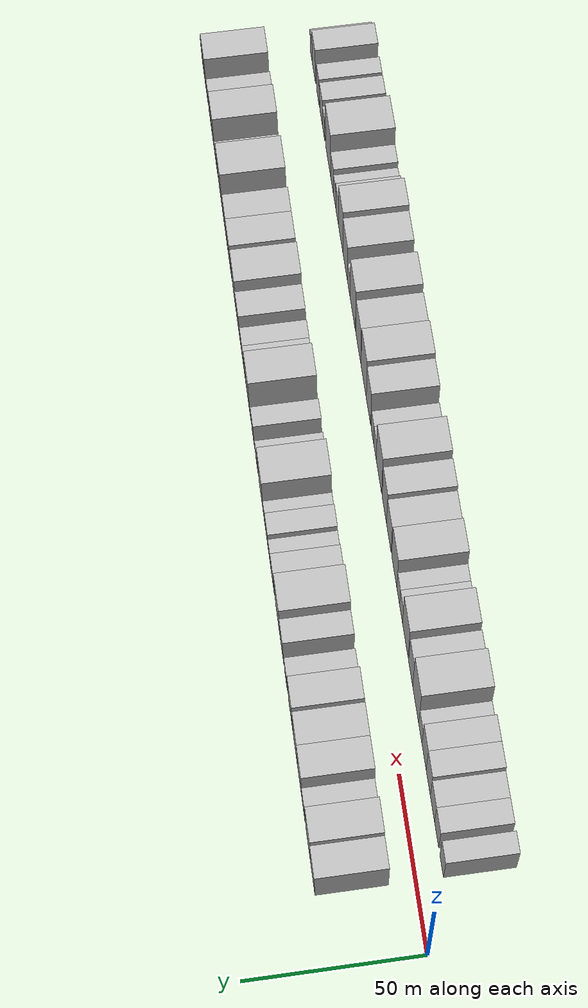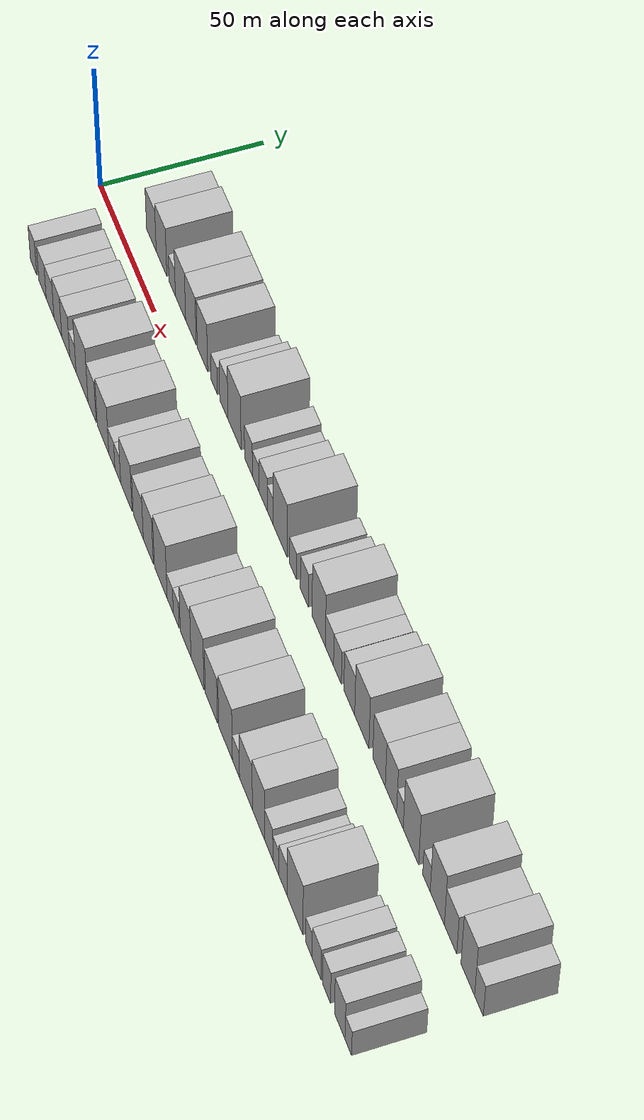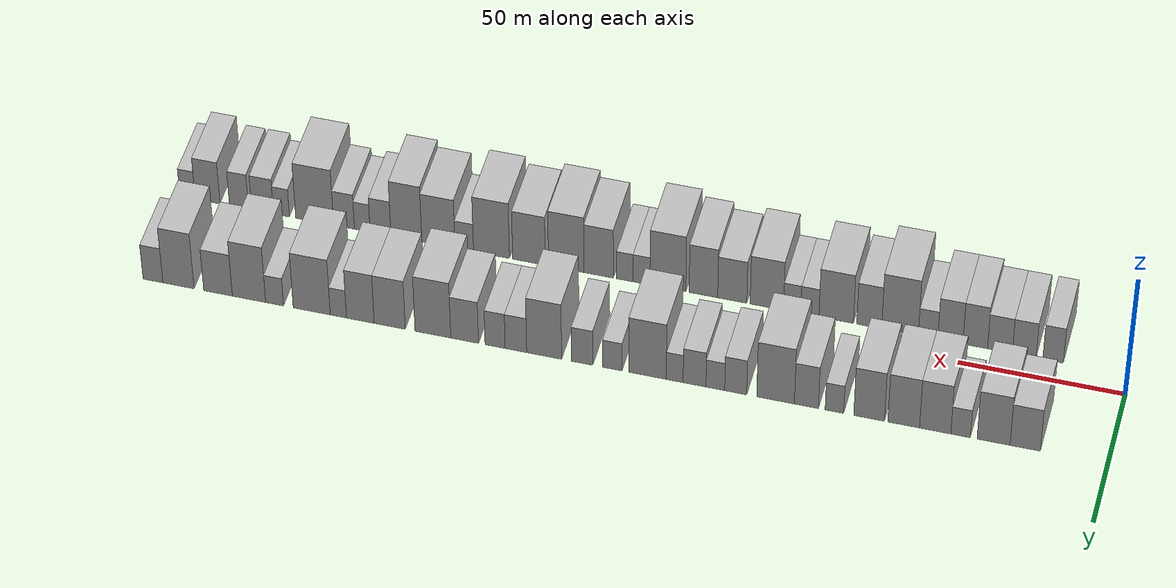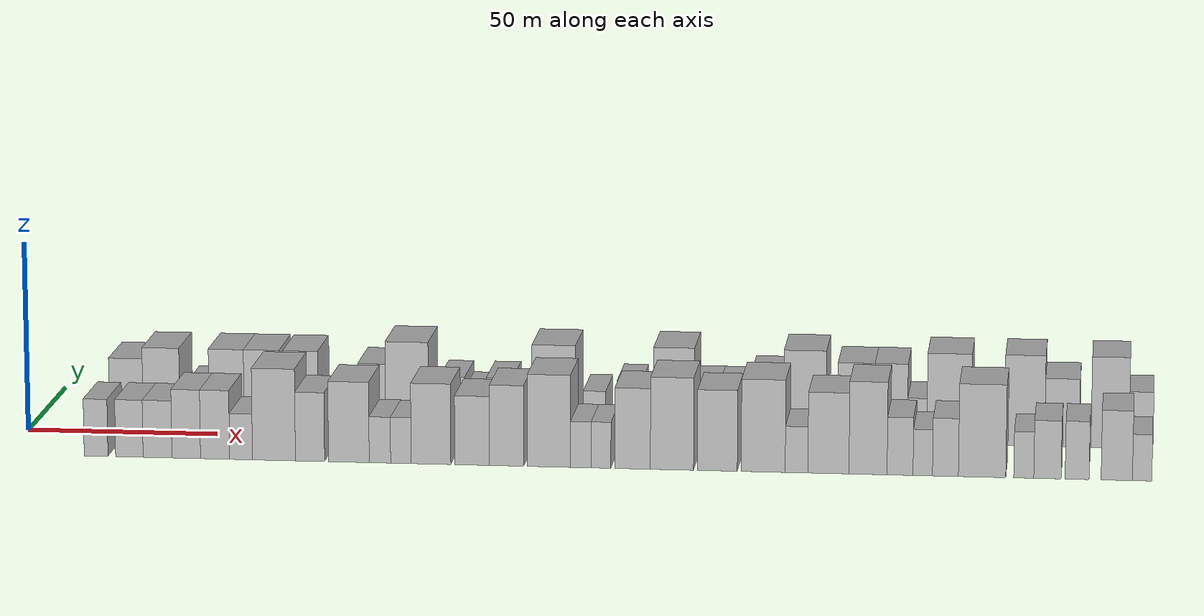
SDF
<sdf version="1.6">
 <world name="default">
  <scene>
   <sky><clouds><speed>12</speed></clouds></sky>
   <ambient>0.4 0.4 0.4 1</ambient>
   <background>0.7 0.7 0.7 1</background>
   <shadows>1</shadows>
  </scene>
  <gravity>0 0 -9.8066</gravity>
  <magnetic_field>6e-06 2.3e-05 -4.2e-05</magnetic_field>
  <physics default="0" name="default_physics" type="ode">
   <ode>
    <solver>
     <type>quick</type>
     <iters>10</iters>
     <sor>1.0</sor>
     <use_dynamic_moi_rescaling>0</use_dynamic_moi_rescaling>
    </solver>
    <constraints>
     <cfm>0</cfm>
     <erp>0.2</erp>
     <contact_max_correcting_vel>100</contact_max_correcting_vel>
     <contact_surface_layer>0.001</contact_surface_layer>
    </constraints>
   </ode>
   <max_step_size>0.004</max_step_size>
   <real_time_factor>1</real_time_factor>
   <real_time_update_rate>250</real_time_update_rate>
  </physics>
  <light name="sun" type="directional">
   <pose>0 0 10 0 0 0</pose>
   <diffuse>0.8 0.8 0.8 1</diffuse>
   <specular>0.2 0.2 0.2 1</specular>
   <attenuation>
    <range>1000</range>
    <constant>0.9</constant>
    <linear>0.01</linear>
    <quadratic>0.001</quadratic>
   </attenuation>
   <direction>-0.5 0.1 -0.9</direction>
  </light>
  <model name="building_1">
   <static>1</static>
   <pose>24.4732 17.5000 0 0.000000 0.000000 1.570796</pose>
   <link name="link">
    <pose>0 0 9.00 0 0 0</pose>
    <collision name="collision"><geometry><box><size>20.0000 8.9463 18.0000</size></box></geometry></collision>
    <visual name="visual">
     <cast_shadows>0</cast_shadows>
     <geometry><box><size>20.0000 8.9463 18.0000</size></box></geometry>
     <material>
      <script>
       <uri>model://HANNAS_wall/materials/scripts</uri>
       <uri>model://HANNAS_wall/materials/textures</uri>
       <name>vrc/HANNAS_wall</name>
      </script>
     </material>
    </visual>
   </link>
  </model>
  <model name="building_2">
   <static>1</static>
   <pose>33.8260 17.5000 0 0.000000 0.000000 1.570796</pose>
   <link name="link">
    <pose>0 0 10.50 0 0 0</pose>
    <collision name="collision"><geometry><box><size>20.0000 9.7593 21.0000</size></box></geometry></collision>
    <visual name="visual">
     <cast_shadows>0</cast_shadows>
     <geometry><box><size>20.0000 9.7593 21.0000</size></box></geometry>
     <material>
      <script>
       <uri>model://HANNAS_wall/materials/scripts</uri>
       <uri>model://HANNAS_wall/materials/textures</uri>
       <name>vrc/HANNAS_wall</name>
      </script>
     </material>
    </visual>
   </link>
  </model>
  <model name="building_3">
   <static>1</static>
   <pose>43.6046 17.5000 0 0.000000 0.000000 1.570796</pose>
   <link name="link">
    <pose>0 0 6.00 0 0 0</pose>
    <collision name="collision"><geometry><box><size>20.0000 5.7978 12.0000</size></box></geometry></collision>
    <visual name="visual">
     <cast_shadows>0</cast_shadows>
     <geometry><box><size>20.0000 5.7978 12.0000</size></box></geometry>
     <material>
      <script>
       <uri>model://HANNAS_wall/materials/scripts</uri>
       <uri>model://HANNAS_wall/materials/textures</uri>
       <name>vrc/HANNAS_wall</name>
      </script>
     </material>
    </visual>
   </link>
  </model>
  <model name="building_4">
   <static>1</static>
   <pose>51.1458 17.5000 0 0.000000 0.000000 1.570796</pose>
   <link name="link">
    <pose>0 0 10.50 0 0 0</pose>
    <collision name="collision"><geometry><box><size>20.0000 9.2847 21.0000</size></box></geometry></collision>
    <visual name="visual">
     <cast_shadows>0</cast_shadows>
     <geometry><box><size>20.0000 9.2847 21.0000</size></box></geometry>
     <material>
      <script>
       <uri>model://HANNAS_wall/materials/scripts</uri>
       <uri>model://HANNAS_wall/materials/textures</uri>
       <name>vrc/HANNAS_wall</name>
      </script>
     </material>
    </visual>
   </link>
  </model>
  <model name="building_5">
   <static>1</static>
   <pose>60.5061 17.5000 0 0.000000 0.000000 1.570796</pose>
   <link name="link">
    <pose>0 0 10.50 0 0 0</pose>
    <collision name="collision"><geometry><box><size>20.0000 9.4358 21.0000</size></box></geometry></collision>
    <visual name="visual">
     <cast_shadows>0</cast_shadows>
     <geometry><box><size>20.0000 9.4358 21.0000</size></box></geometry>
     <material>
      <script>
       <uri>model://HANNAS_wall/materials/scripts</uri>
       <uri>model://HANNAS_wall/materials/textures</uri>
       <name>vrc/HANNAS_wall</name>
      </script>
     </material>
    </visual>
   </link>
  </model>
  <model name="building_6">
   <static>1</static>
   <pose>70.8064 17.5000 0 0.000000 0.000000 1.570796</pose>
   <link name="link">
    <pose>0 0 10.50 0 0 0</pose>
    <collision name="collision"><geometry><box><size>20.0000 9.1649 21.0000</size></box></geometry></collision>
    <visual name="visual">
     <cast_shadows>0</cast_shadows>
     <geometry><box><size>20.0000 9.1649 21.0000</size></box></geometry>
     <material>
      <script>
       <uri>model://HANNAS_wall/materials/scripts</uri>
       <uri>model://HANNAS_wall/materials/textures</uri>
       <name>vrc/HANNAS_wall</name>
      </script>
     </material>
    </visual>
   </link>
  </model>
  <model name="building_7">
   <static>1</static>
   <pose>81.1681 17.5000 0 0.000000 0.000000 1.570796</pose>
   <link name="link">
    <pose>0 0 6.00 0 0 0</pose>
    <collision name="collision"><geometry><box><size>20.0000 5.5586 12.0000</size></box></geometry></collision>
    <visual name="visual">
     <cast_shadows>0</cast_shadows>
     <geometry><box><size>20.0000 5.5586 12.0000</size></box></geometry>
     <material>
      <script>
       <uri>model://HANNAS_wall/materials/scripts</uri>
       <uri>model://HANNAS_wall/materials/textures</uri>
       <name>vrc/HANNAS_wall</name>
      </script>
     </material>
    </visual>
   </link>
  </model>
  <model name="building_8">
   <static>1</static>
   <pose>89.5558 17.5000 0 0.000000 0.000000 1.570796</pose>
   <link name="link">
    <pose>0 0 9.00 0 0 0</pose>
    <collision name="collision"><geometry><box><size>20.0000 7.2167 18.0000</size></box></geometry></collision>
    <visual name="visual">
     <cast_shadows>0</cast_shadows>
     <geometry><box><size>20.0000 7.2167 18.0000</size></box></geometry>
     <material>
      <script>
       <uri>model://HANNAS_wall/materials/scripts</uri>
       <uri>model://HANNAS_wall/materials/textures</uri>
       <name>vrc/HANNAS_wall</name>
      </script>
     </material>
    </visual>
   </link>
  </model>
  <model name="building_9">
   <static>1</static>
   <pose>98.8152 17.5000 0 0.000000 0.000000 1.570796</pose>
   <link name="link">
    <pose>0 0 12.00 0 0 0</pose>
    <collision name="collision"><geometry><box><size>20.0000 11.3021 24.0000</size></box></geometry></collision>
    <visual name="visual">
     <cast_shadows>0</cast_shadows>
     <geometry><box><size>20.0000 11.3021 24.0000</size></box></geometry>
     <material>
      <script>
       <uri>model://HANNAS_wall/materials/scripts</uri>
       <uri>model://HANNAS_wall/materials/textures</uri>
       <name>vrc/HANNAS_wall</name>
      </script>
     </material>
    </visual>
   </link>
  </model>
  <model name="building_10">
   <static>1</static>
   <pose>110.7903 17.5000 0 0.000000 0.000000 1.570796</pose>
   <link name="link">
    <pose>0 0 7.50 0 0 0</pose>
    <collision name="collision"><geometry><box><size>20.0000 6.6480 15.0000</size></box></geometry></collision>
    <visual name="visual">
     <cast_shadows>0</cast_shadows>
     <geometry><box><size>20.0000 6.6480 15.0000</size></box></geometry>
     <material>
      <script>
       <uri>model://HANNAS_wall/materials/scripts</uri>
       <uri>model://HANNAS_wall/materials/textures</uri>
       <name>vrc/HANNAS_wall</name>
      </script>
     </material>
    </visual>
   </link>
  </model>
  <model name="building_11">
   <static>1</static>
   <pose>116.9366 17.5000 0 0.000000 0.000000 1.570796</pose>
   <link name="link">
    <pose>0 0 6.00 0 0 0</pose>
    <collision name="collision"><geometry><box><size>20.0000 5.6447 12.0000</size></box></geometry></collision>
    <visual name="visual">
     <cast_shadows>0</cast_shadows>
     <geometry><box><size>20.0000 5.6447 12.0000</size></box></geometry>
     <material>
      <script>
       <uri>model://HANNAS_wall/materials/scripts</uri>
       <uri>model://HANNAS_wall/materials/textures</uri>
       <name>vrc/HANNAS_wall</name>
      </script>
     </material>
    </visual>
   </link>
  </model>
  <model name="building_12">
   <static>1</static>
   <pose>123.2144 17.5000 0 0.000000 0.000000 1.570796</pose>
   <link name="link">
    <pose>0 0 7.50 0 0 0</pose>
    <collision name="collision"><geometry><box><size>20.0000 6.9108 15.0000</size></box></geometry></collision>
    <visual name="visual">
     <cast_shadows>0</cast_shadows>
     <geometry><box><size>20.0000 6.9108 15.0000</size></box></geometry>
     <material>
      <script>
       <uri>model://HANNAS_wall/materials/scripts</uri>
       <uri>model://HANNAS_wall/materials/textures</uri>
       <name>vrc/HANNAS_wall</name>
      </script>
     </material>
    </visual>
   </link>
  </model>
  <model name="building_13">
   <static>1</static>
   <pose>129.1945 17.5000 0 0.000000 0.000000 1.570796</pose>
   <link name="link">
    <pose>0 0 6.00 0 0 0</pose>
    <collision name="collision"><geometry><box><size>20.0000 5.0494 12.0000</size></box></geometry></collision>
    <visual name="visual">
     <cast_shadows>0</cast_shadows>
     <geometry><box><size>20.0000 5.0494 12.0000</size></box></geometry>
     <material>
      <script>
       <uri>model://HANNAS_wall/materials/scripts</uri>
       <uri>model://HANNAS_wall/materials/textures</uri>
       <name>vrc/HANNAS_wall</name>
      </script>
     </material>
    </visual>
   </link>
  </model>
  <model name="building_14">
   <static>1</static>
   <pose>137.4230 17.5000 0 0.000000 0.000000 1.570796</pose>
   <link name="link">
    <pose>0 0 12.00 0 0 0</pose>
    <collision name="collision"><geometry><box><size>20.0000 11.4074 24.0000</size></box></geometry></collision>
    <visual name="visual">
     <cast_shadows>0</cast_shadows>
     <geometry><box><size>20.0000 11.4074 24.0000</size></box></geometry>
     <material>
      <script>
       <uri>model://HANNAS_wall/materials/scripts</uri>
       <uri>model://HANNAS_wall/materials/textures</uri>
       <name>vrc/HANNAS_wall</name>
      </script>
     </material>
    </visual>
   </link>
  </model>
  <model name="building_15">
   <static>1</static>
   <pose>148.0686 17.5000 0 0.000000 0.000000 1.570796</pose>
   <link name="link">
    <pose>0 0 6.00 0 0 0</pose>
    <collision name="collision"><geometry><box><size>20.0000 5.8838 12.0000</size></box></geometry></collision>
    <visual name="visual">
     <cast_shadows>0</cast_shadows>
     <geometry><box><size>20.0000 5.8838 12.0000</size></box></geometry>
     <material>
      <script>
       <uri>model://HANNAS_wall/materials/scripts</uri>
       <uri>model://HANNAS_wall/materials/textures</uri>
       <name>vrc/HANNAS_wall</name>
      </script>
     </material>
    </visual>
   </link>
  </model>
  <model name="building_16">
   <static>1</static>
   <pose>157.2566 17.5000 0 0.000000 0.000000 1.570796</pose>
   <link name="link">
    <pose>0 0 7.50 0 0 0</pose>
    <collision name="collision"><geometry><box><size>20.0000 6.4921 15.0000</size></box></geometry></collision>
    <visual name="visual">
     <cast_shadows>0</cast_shadows>
     <geometry><box><size>20.0000 6.4921 15.0000</size></box></geometry>
     <material>
      <script>
       <uri>model://HANNAS_wall/materials/scripts</uri>
       <uri>model://HANNAS_wall/materials/textures</uri>
       <name>vrc/HANNAS_wall</name>
      </script>
     </material>
    </visual>
   </link>
  </model>
  <model name="building_17">
   <static>1</static>
   <pose>168.8353 17.5000 0 0.000000 0.000000 1.570796</pose>
   <link name="link">
    <pose>0 0 12.00 0 0 0</pose>
    <collision name="collision"><geometry><box><size>20.0000 10.6654 24.0000</size></box></geometry></collision>
    <visual name="visual">
     <cast_shadows>0</cast_shadows>
     <geometry><box><size>20.0000 10.6654 24.0000</size></box></geometry>
     <material>
      <script>
       <uri>model://HANNAS_wall/materials/scripts</uri>
       <uri>model://HANNAS_wall/materials/textures</uri>
       <name>vrc/HANNAS_wall</name>
      </script>
     </material>
    </visual>
   </link>
  </model>
  <model name="building_18">
   <static>1</static>
   <pose>177.4639 17.5000 0 0.000000 0.000000 1.570796</pose>
   <link name="link">
    <pose>0 0 7.50 0 0 0</pose>
    <collision name="collision"><geometry><box><size>20.0000 6.5917 15.0000</size></box></geometry></collision>
    <visual name="visual">
     <cast_shadows>0</cast_shadows>
     <geometry><box><size>20.0000 6.5917 15.0000</size></box></geometry>
     <material>
      <script>
       <uri>model://HANNAS_wall/materials/scripts</uri>
       <uri>model://HANNAS_wall/materials/textures</uri>
       <name>vrc/HANNAS_wall</name>
      </script>
     </material>
    </visual>
   </link>
  </model>
  <model name="building_19">
   <static>1</static>
   <pose>183.8232 17.5000 0 0.000000 0.000000 1.570796</pose>
   <link name="link">
    <pose>0 0 7.50 0 0 0</pose>
    <collision name="collision"><geometry><box><size>20.0000 6.1270 15.0000</size></box></geometry></collision>
    <visual name="visual">
     <cast_shadows>0</cast_shadows>
     <geometry><box><size>20.0000 6.1270 15.0000</size></box></geometry>
     <material>
      <script>
       <uri>model://HANNAS_wall/materials/scripts</uri>
       <uri>model://HANNAS_wall/materials/textures</uri>
       <name>vrc/HANNAS_wall</name>
      </script>
     </material>
    </visual>
   </link>
  </model>
  <model name="building_20">
   <static>1</static>
   <pose>193.1469 17.5000 0 0.000000 0.000000 1.570796</pose>
   <link name="link">
    <pose>0 0 9.00 0 0 0</pose>
    <collision name="collision"><geometry><box><size>20.0000 8.5202 18.0000</size></box></geometry></collision>
    <visual name="visual">
     <cast_shadows>0</cast_shadows>
     <geometry><box><size>20.0000 8.5202 18.0000</size></box></geometry>
     <material>
      <script>
       <uri>model://HANNAS_wall/materials/scripts</uri>
       <uri>model://HANNAS_wall/materials/textures</uri>
       <name>vrc/HANNAS_wall</name>
      </script>
     </material>
    </visual>
   </link>
  </model>
  <model name="building_21">
   <static>1</static>
   <pose>202.9003 17.5000 0 0.000000 0.000000 1.570796</pose>
   <link name="link">
    <pose>0 0 12.00 0 0 0</pose>
    <collision name="collision"><geometry><box><size>20.0000 10.9868 24.0000</size></box></geometry></collision>
    <visual name="visual">
     <cast_shadows>0</cast_shadows>
     <geometry><box><size>20.0000 10.9868 24.0000</size></box></geometry>
     <material>
      <script>
       <uri>model://HANNAS_wall/materials/scripts</uri>
       <uri>model://HANNAS_wall/materials/textures</uri>
       <name>vrc/HANNAS_wall</name>
      </script>
     </material>
    </visual>
   </link>
  </model>
  <model name="building_22">
   <static>1</static>
   <pose>216.1861 17.5000 0 0.000000 0.000000 1.570796</pose>
   <link name="link">
    <pose>0 0 10.50 0 0 0</pose>
    <collision name="collision"><geometry><box><size>20.0000 9.5848 21.0000</size></box></geometry></collision>
    <visual name="visual">
     <cast_shadows>0</cast_shadows>
     <geometry><box><size>20.0000 9.5848 21.0000</size></box></geometry>
     <material>
      <script>
       <uri>model://HANNAS_wall/materials/scripts</uri>
       <uri>model://HANNAS_wall/materials/textures</uri>
       <name>vrc/HANNAS_wall</name>
      </script>
     </material>
    </visual>
   </link>
  </model>
  <model name="building_23">
   <static>1</static>
   <pose>225.2567 17.5000 0 0.000000 0.000000 1.570796</pose>
   <link name="link">
    <pose>0 0 10.50 0 0 0</pose>
    <collision name="collision"><geometry><box><size>20.0000 8.5564 21.0000</size></box></geometry></collision>
    <visual name="visual">
     <cast_shadows>0</cast_shadows>
     <geometry><box><size>20.0000 8.5564 21.0000</size></box></geometry>
     <material>
      <script>
       <uri>model://HANNAS_wall/materials/scripts</uri>
       <uri>model://HANNAS_wall/materials/textures</uri>
       <name>vrc/HANNAS_wall</name>
      </script>
     </material>
    </visual>
   </link>
  </model>
  <model name="building_24">
   <static>1</static>
   <pose>232.0431 17.5000 0 0.000000 0.000000 1.570796</pose>
   <link name="link">
    <pose>0 0 6.00 0 0 0</pose>
    <collision name="collision"><geometry><box><size>20.0000 5.0165 12.0000</size></box></geometry></collision>
    <visual name="visual">
     <cast_shadows>0</cast_shadows>
     <geometry><box><size>20.0000 5.0165 12.0000</size></box></geometry>
     <material>
      <script>
       <uri>model://HANNAS_wall/materials/scripts</uri>
       <uri>model://HANNAS_wall/materials/textures</uri>
       <name>vrc/HANNAS_wall</name>
      </script>
     </material>
    </visual>
   </link>
  </model>
  <model name="building_25">
   <static>1</static>
   <pose>240.2965 17.5000 0 0.000000 0.000000 1.570796</pose>
   <link name="link">
    <pose>0 0 12.00 0 0 0</pose>
    <collision name="collision"><geometry><box><size>20.0000 11.4902 24.0000</size></box></geometry></collision>
    <visual name="visual">
     <cast_shadows>0</cast_shadows>
     <geometry><box><size>20.0000 11.4902 24.0000</size></box></geometry>
     <material>
      <script>
       <uri>model://HANNAS_wall/materials/scripts</uri>
       <uri>model://HANNAS_wall/materials/textures</uri>
       <name>vrc/HANNAS_wall</name>
      </script>
     </material>
    </visual>
   </link>
  </model>
  <model name="building_26">
   <static>1</static>
   <pose>251.8174 17.5000 0 0.000000 0.000000 1.570796</pose>
   <link name="link">
    <pose>0 0 6.00 0 0 0</pose>
    <collision name="collision"><geometry><box><size>20.0000 5.5515 12.0000</size></box></geometry></collision>
    <visual name="visual">
     <cast_shadows>0</cast_shadows>
     <geometry><box><size>20.0000 5.5515 12.0000</size></box></geometry>
     <material>
      <script>
       <uri>model://HANNAS_wall/materials/scripts</uri>
       <uri>model://HANNAS_wall/materials/textures</uri>
       <name>vrc/HANNAS_wall</name>
      </script>
     </material>
    </visual>
   </link>
  </model>
  <model name="building_27">
   <static>1</static>
   <pose>259.7761 17.5000 0 0.000000 0.000000 1.570796</pose>
   <link name="link">
    <pose>0 0 12.00 0 0 0</pose>
    <collision name="collision"><geometry><box><size>20.0000 10.3660 24.0000</size></box></geometry></collision>
    <visual name="visual">
     <cast_shadows>0</cast_shadows>
     <geometry><box><size>20.0000 10.3660 24.0000</size></box></geometry>
     <material>
      <script>
       <uri>model://HANNAS_wall/materials/scripts</uri>
       <uri>model://HANNAS_wall/materials/textures</uri>
       <name>vrc/HANNAS_wall</name>
      </script>
     </material>
    </visual>
   </link>
  </model>
  <model name="building_28">
   <static>1</static>
   <pose>269.4195 17.5000 0 0.000000 0.000000 1.570796</pose>
   <link name="link">
    <pose>0 0 9.00 0 0 0</pose>
    <collision name="collision"><geometry><box><size>20.0000 8.9207 18.0000</size></box></geometry></collision>
    <visual name="visual">
     <cast_shadows>0</cast_shadows>
     <geometry><box><size>20.0000 8.9207 18.0000</size></box></geometry>
     <material>
      <script>
       <uri>model://HANNAS_wall/materials/scripts</uri>
       <uri>model://HANNAS_wall/materials/textures</uri>
       <name>vrc/HANNAS_wall</name>
      </script>
     </material>
    </visual>
   </link>
  </model>
  <model name="building_29">
   <static>1</static>
   <pose>281.7597 17.5000 0 0.000000 0.000000 1.570796</pose>
   <link name="link">
    <pose>0 0 12.00 0 0 0</pose>
    <collision name="collision"><geometry><box><size>20.0000 9.7597 24.0000</size></box></geometry></collision>
    <visual name="visual">
     <cast_shadows>0</cast_shadows>
     <geometry><box><size>20.0000 9.7597 24.0000</size></box></geometry>
     <material>
      <script>
       <uri>model://HANNAS_wall/materials/scripts</uri>
       <uri>model://HANNAS_wall/materials/textures</uri>
       <name>vrc/HANNAS_wall</name>
      </script>
     </material>
    </visual>
   </link>
  </model>
  <model name="building_30">
   <static>1</static>
   <pose>289.7358 17.5000 0 0.000000 0.000000 1.570796</pose>
   <link name="link">
    <pose>0 0 7.50 0 0 0</pose>
    <collision name="collision"><geometry><box><size>20.0000 6.1925 15.0000</size></box></geometry></collision>
    <visual name="visual">
     <cast_shadows>0</cast_shadows>
     <geometry><box><size>20.0000 6.1925 15.0000</size></box></geometry>
     <material>
      <script>
       <uri>model://HANNAS_wall/materials/scripts</uri>
       <uri>model://HANNAS_wall/materials/textures</uri>
       <name>vrc/HANNAS_wall</name>
      </script>
     </material>
    </visual>
   </link>
  </model>
  <model name="building_31">
   <static>1</static>
   <pose>23.0851 -17.5000 0 0.000000 0.000000 1.570796</pose>
   <link name="link">
    <pose>0 0 7.50 0 0 0</pose>
    <collision name="collision"><geometry><box><size>20.0000 6.1702 15.0000</size></box></geometry></collision>
    <visual name="visual">
     <cast_shadows>0</cast_shadows>
     <geometry><box><size>20.0000 6.1702 15.0000</size></box></geometry>
     <material>
      <script>
       <uri>model://HANNAS_wall/materials/scripts</uri>
       <uri>model://HANNAS_wall/materials/textures</uri>
       <name>vrc/HANNAS_wall</name>
      </script>
     </material>
    </visual>
   </link>
  </model>
  <model name="building_32">
   <static>1</static>
   <pose>31.7403 -17.5000 0 0.000000 0.000000 1.570796</pose>
   <link name="link">
    <pose>0 0 7.50 0 0 0</pose>
    <collision name="collision"><geometry><box><size>20.0000 7.1403 15.0000</size></box></geometry></collision>
    <visual name="visual">
     <cast_shadows>0</cast_shadows>
     <geometry><box><size>20.0000 7.1403 15.0000</size></box></geometry>
     <material>
      <script>
       <uri>model://HANNAS_wall/materials/scripts</uri>
       <uri>model://HANNAS_wall/materials/textures</uri>
       <name>vrc/HANNAS_wall</name>
      </script>
     </material>
    </visual>
   </link>
  </model>
  <model name="building_33">
   <static>1</static>
   <pose>39.0453 -17.5000 0 0.000000 0.000000 1.570796</pose>
   <link name="link">
    <pose>0 0 7.50 0 0 0</pose>
    <collision name="collision"><geometry><box><size>20.0000 7.4695 15.0000</size></box></geometry></collision>
    <visual name="visual">
     <cast_shadows>0</cast_shadows>
     <geometry><box><size>20.0000 7.4695 15.0000</size></box></geometry>
     <material>
      <script>
       <uri>model://HANNAS_wall/materials/scripts</uri>
       <uri>model://HANNAS_wall/materials/textures</uri>
       <name>vrc/HANNAS_wall</name>
      </script>
     </material>
    </visual>
   </link>
  </model>
  <model name="building_34">
   <static>1</static>
   <pose>46.4872 -17.5000 0 0.000000 0.000000 1.570796</pose>
   <link name="link">
    <pose>0 0 9.00 0 0 0</pose>
    <collision name="collision"><geometry><box><size>20.0000 7.4143 18.0000</size></box></geometry></collision>
    <visual name="visual">
     <cast_shadows>0</cast_shadows>
     <geometry><box><size>20.0000 7.4143 18.0000</size></box></geometry>
     <material>
      <script>
       <uri>model://HANNAS_wall/materials/scripts</uri>
       <uri>model://HANNAS_wall/materials/textures</uri>
       <name>vrc/HANNAS_wall</name>
      </script>
     </material>
    </visual>
   </link>
  </model>
  <model name="building_35">
   <static>1</static>
   <pose>53.9742 -17.5000 0 0.000000 0.000000 1.570796</pose>
   <link name="link">
    <pose>0 0 9.00 0 0 0</pose>
    <collision name="collision"><geometry><box><size>20.0000 7.5598 18.0000</size></box></geometry></collision>
    <visual name="visual">
     <cast_shadows>0</cast_shadows>
     <geometry><box><size>20.0000 7.5598 18.0000</size></box></geometry>
     <material>
      <script>
       <uri>model://HANNAS_wall/materials/scripts</uri>
       <uri>model://HANNAS_wall/materials/textures</uri>
       <name>vrc/HANNAS_wall</name>
      </script>
     </material>
    </visual>
   </link>
  </model>
  <model name="building_36">
   <static>1</static>
   <pose>60.7030 -17.5000 0 0.000000 0.000000 1.570796</pose>
   <link name="link">
    <pose>0 0 6.00 0 0 0</pose>
    <collision name="collision"><geometry><box><size>20.0000 5.8978 12.0000</size></box></geometry></collision>
    <visual name="visual">
     <cast_shadows>0</cast_shadows>
     <geometry><box><size>20.0000 5.8978 12.0000</size></box></geometry>
     <material>
      <script>
       <uri>model://HANNAS_wall/materials/scripts</uri>
       <uri>model://HANNAS_wall/materials/textures</uri>
       <name>vrc/HANNAS_wall</name>
      </script>
     </material>
    </visual>
   </link>
  </model>
  <model name="building_37">
   <static>1</static>
   <pose>69.2000 -17.5000 0 0.000000 0.000000 1.570796</pose>
   <link name="link">
    <pose>0 0 12.00 0 0 0</pose>
    <collision name="collision"><geometry><box><size>20.0000 11.0962 24.0000</size></box></geometry></collision>
    <visual name="visual">
     <cast_shadows>0</cast_shadows>
     <geometry><box><size>20.0000 11.0962 24.0000</size></box></geometry>
     <material>
      <script>
       <uri>model://HANNAS_wall/materials/scripts</uri>
       <uri>model://HANNAS_wall/materials/textures</uri>
       <name>vrc/HANNAS_wall</name>
      </script>
     </material>
    </visual>
   </link>
  </model>
  <model name="building_38">
   <static>1</static>
   <pose>78.5195 -17.5000 0 0.000000 0.000000 1.570796</pose>
   <link name="link">
    <pose>0 0 9.00 0 0 0</pose>
    <collision name="collision"><geometry><box><size>20.0000 7.5427 18.0000</size></box></geometry></collision>
    <visual name="visual">
     <cast_shadows>0</cast_shadows>
     <geometry><box><size>20.0000 7.5427 18.0000</size></box></geometry>
     <material>
      <script>
       <uri>model://HANNAS_wall/materials/scripts</uri>
       <uri>model://HANNAS_wall/materials/textures</uri>
       <name>vrc/HANNAS_wall</name>
      </script>
     </material>
    </visual>
   </link>
  </model>
  <model name="building_39">
   <static>1</static>
   <pose>88.5341 -17.5000 0 0.000000 0.000000 1.570796</pose>
   <link name="link">
    <pose>0 0 10.50 0 0 0</pose>
    <collision name="collision"><geometry><box><size>20.0000 10.4865 21.0000</size></box></geometry></collision>
    <visual name="visual">
     <cast_shadows>0</cast_shadows>
     <geometry><box><size>20.0000 10.4865 21.0000</size></box></geometry>
     <material>
      <script>
       <uri>model://HANNAS_wall/materials/scripts</uri>
       <uri>model://HANNAS_wall/materials/textures</uri>
       <name>vrc/HANNAS_wall</name>
      </script>
     </material>
    </visual>
   </link>
  </model>
  <model name="building_40">
   <static>1</static>
   <pose>96.5365 -17.5000 0 0.000000 0.000000 1.570796</pose>
   <link name="link">
    <pose>0 0 6.00 0 0 0</pose>
    <collision name="collision"><geometry><box><size>20.0000 5.5183 12.0000</size></box></geometry></collision>
    <visual name="visual">
     <cast_shadows>0</cast_shadows>
     <geometry><box><size>20.0000 5.5183 12.0000</size></box></geometry>
     <material>
      <script>
       <uri>model://HANNAS_wall/materials/scripts</uri>
       <uri>model://HANNAS_wall/materials/textures</uri>
       <name>vrc/HANNAS_wall</name>
      </script>
     </material>
    </visual>
   </link>
  </model>
  <model name="building_41">
   <static>1</static>
   <pose>101.9271 -17.5000 0 0.000000 0.000000 1.570796</pose>
   <link name="link">
    <pose>0 0 6.00 0 0 0</pose>
    <collision name="collision"><geometry><box><size>20.0000 5.2628 12.0000</size></box></geometry></collision>
    <visual name="visual">
     <cast_shadows>0</cast_shadows>
     <geometry><box><size>20.0000 5.2628 12.0000</size></box></geometry>
     <material>
      <script>
       <uri>model://HANNAS_wall/materials/scripts</uri>
       <uri>model://HANNAS_wall/materials/textures</uri>
       <name>vrc/HANNAS_wall</name>
      </script>
     </material>
    </visual>
   </link>
  </model>
  <model name="building_42">
   <static>1</static>
   <pose>109.6693 -17.5000 0 0.000000 0.000000 1.570796</pose>
   <link name="link">
    <pose>0 0 10.50 0 0 0</pose>
    <collision name="collision"><geometry><box><size>20.0000 10.2217 21.0000</size></box></geometry></collision>
    <visual name="visual">
     <cast_shadows>0</cast_shadows>
     <geometry><box><size>20.0000 10.2217 21.0000</size></box></geometry>
     <material>
      <script>
       <uri>model://HANNAS_wall/materials/scripts</uri>
       <uri>model://HANNAS_wall/materials/textures</uri>
       <name>vrc/HANNAS_wall</name>
      </script>
     </material>
    </visual>
   </link>
  </model>
  <model name="building_43">
   <static>1</static>
   <pose>120.2345 -17.5000 0 0.000000 0.000000 1.570796</pose>
   <link name="link">
    <pose>0 0 9.00 0 0 0</pose>
    <collision name="collision"><geometry><box><size>20.0000 8.9088 18.0000</size></box></geometry></collision>
    <visual name="visual">
     <cast_shadows>0</cast_shadows>
     <geometry><box><size>20.0000 8.9088 18.0000</size></box></geometry>
     <material>
      <script>
       <uri>model://HANNAS_wall/materials/scripts</uri>
       <uri>model://HANNAS_wall/materials/textures</uri>
       <name>vrc/HANNAS_wall</name>
      </script>
     </material>
    </visual>
   </link>
  </model>
  <model name="building_44">
   <static>1</static>
   <pose>129.0713 -17.5000 0 0.000000 0.000000 1.570796</pose>
   <link name="link">
    <pose>0 0 10.50 0 0 0</pose>
    <collision name="collision"><geometry><box><size>20.0000 8.7648 21.0000</size></box></geometry></collision>
    <visual name="visual">
     <cast_shadows>0</cast_shadows>
     <geometry><box><size>20.0000 8.7648 21.0000</size></box></geometry>
     <material>
      <script>
       <uri>model://HANNAS_wall/materials/scripts</uri>
       <uri>model://HANNAS_wall/materials/textures</uri>
       <name>vrc/HANNAS_wall</name>
      </script>
     </material>
    </visual>
   </link>
  </model>
  <model name="building_45">
   <static>1</static>
   <pose>139.9456 -17.5000 0 0.000000 0.000000 1.570796</pose>
   <link name="link">
    <pose>0 0 12.00 0 0 0</pose>
    <collision name="collision"><geometry><box><size>20.0000 10.9838 24.0000</size></box></geometry></collision>
    <visual name="visual">
     <cast_shadows>0</cast_shadows>
     <geometry><box><size>20.0000 10.9838 24.0000</size></box></geometry>
     <material>
      <script>
       <uri>model://HANNAS_wall/materials/scripts</uri>
       <uri>model://HANNAS_wall/materials/textures</uri>
       <name>vrc/HANNAS_wall</name>
      </script>
     </material>
    </visual>
   </link>
  </model>
  <model name="building_46">
   <static>1</static>
   <pose>148.0660 -17.5000 0 0.000000 0.000000 1.570796</pose>
   <link name="link">
    <pose>0 0 6.00 0 0 0</pose>
    <collision name="collision"><geometry><box><size>20.0000 5.2570 12.0000</size></box></geometry></collision>
    <visual name="visual">
     <cast_shadows>0</cast_shadows>
     <geometry><box><size>20.0000 5.2570 12.0000</size></box></geometry>
     <material>
      <script>
       <uri>model://HANNAS_wall/materials/scripts</uri>
       <uri>model://HANNAS_wall/materials/textures</uri>
       <name>vrc/HANNAS_wall</name>
      </script>
     </material>
    </visual>
   </link>
  </model>
  <model name="building_47">
   <static>1</static>
   <pose>153.2281 -17.5000 0 0.000000 0.000000 1.570796</pose>
   <link name="link">
    <pose>0 0 6.00 0 0 0</pose>
    <collision name="collision"><geometry><box><size>20.0000 5.0671 12.0000</size></box></geometry></collision>
    <visual name="visual">
     <cast_shadows>0</cast_shadows>
     <geometry><box><size>20.0000 5.0671 12.0000</size></box></geometry>
     <material>
      <script>
       <uri>model://HANNAS_wall/materials/scripts</uri>
       <uri>model://HANNAS_wall/materials/textures</uri>
       <name>vrc/HANNAS_wall</name>
      </script>
     </material>
    </visual>
   </link>
  </model>
  <model name="building_48">
   <static>1</static>
   <pose>161.2894 -17.5000 0 0.000000 0.000000 1.570796</pose>
   <link name="link">
    <pose>0 0 10.50 0 0 0</pose>
    <collision name="collision"><geometry><box><size>20.0000 9.0556 21.0000</size></box></geometry></collision>
    <visual name="visual">
     <cast_shadows>0</cast_shadows>
     <geometry><box><size>20.0000 9.0556 21.0000</size></box></geometry>
     <material>
      <script>
       <uri>model://HANNAS_wall/materials/scripts</uri>
       <uri>model://HANNAS_wall/materials/textures</uri>
       <name>vrc/HANNAS_wall</name>
      </script>
     </material>
    </visual>
   </link>
  </model>
  <model name="building_49">
   <static>1</static>
   <pose>171.3125 -17.5000 0 0.000000 0.000000 1.570796</pose>
   <link name="link">
    <pose>0 0 12.00 0 0 0</pose>
    <collision name="collision"><geometry><box><size>20.0000 10.9906 24.0000</size></box></geometry></collision>
    <visual name="visual">
     <cast_shadows>0</cast_shadows>
     <geometry><box><size>20.0000 10.9906 24.0000</size></box></geometry>
     <material>
      <script>
       <uri>model://HANNAS_wall/materials/scripts</uri>
       <uri>model://HANNAS_wall/materials/textures</uri>
       <name>vrc/HANNAS_wall</name>
      </script>
     </material>
    </visual>
   </link>
  </model>
  <model name="building_50">
   <static>1</static>
   <pose>182.8734 -17.5000 0 0.000000 0.000000 1.570796</pose>
   <link name="link">
    <pose>0 0 10.50 0 0 0</pose>
    <collision name="collision"><geometry><box><size>20.0000 10.1313 21.0000</size></box></geometry></collision>
    <visual name="visual">
     <cast_shadows>0</cast_shadows>
     <geometry><box><size>20.0000 10.1313 21.0000</size></box></geometry>
     <material>
      <script>
       <uri>model://HANNAS_wall/materials/scripts</uri>
       <uri>model://HANNAS_wall/materials/textures</uri>
       <name>vrc/HANNAS_wall</name>
      </script>
     </material>
    </visual>
   </link>
  </model>
  <model name="building_51">
   <static>1</static>
   <pose>194.5248 -17.5000 0 0.000000 0.000000 1.570796</pose>
   <link name="link">
    <pose>0 0 12.00 0 0 0</pose>
    <collision name="collision"><geometry><box><size>20.0000 11.1714 24.0000</size></box></geometry></collision>
    <visual name="visual">
     <cast_shadows>0</cast_shadows>
     <geometry><box><size>20.0000 11.1714 24.0000</size></box></geometry>
     <material>
      <script>
       <uri>model://HANNAS_wall/materials/scripts</uri>
       <uri>model://HANNAS_wall/materials/textures</uri>
       <name>vrc/HANNAS_wall</name>
      </script>
     </material>
    </visual>
   </link>
  </model>
  <model name="building_52">
   <static>1</static>
   <pose>202.9877 -17.5000 0 0.000000 0.000000 1.570796</pose>
   <link name="link">
    <pose>0 0 6.00 0 0 0</pose>
    <collision name="collision"><geometry><box><size>20.0000 5.7544 12.0000</size></box></geometry></collision>
    <visual name="visual">
     <cast_shadows>0</cast_shadows>
     <geometry><box><size>20.0000 5.7544 12.0000</size></box></geometry>
     <material>
      <script>
       <uri>model://HANNAS_wall/materials/scripts</uri>
       <uri>model://HANNAS_wall/materials/textures</uri>
       <name>vrc/HANNAS_wall</name>
      </script>
     </material>
    </visual>
   </link>
  </model>
  <model name="building_53">
   <static>1</static>
   <pose>211.0605 -17.5000 0 0.000000 0.000000 1.570796</pose>
   <link name="link">
    <pose>0 0 10.50 0 0 0</pose>
    <collision name="collision"><geometry><box><size>20.0000 10.3911 21.0000</size></box></geometry></collision>
    <visual name="visual">
     <cast_shadows>0</cast_shadows>
     <geometry><box><size>20.0000 10.3911 21.0000</size></box></geometry>
     <material>
      <script>
       <uri>model://HANNAS_wall/materials/scripts</uri>
       <uri>model://HANNAS_wall/materials/textures</uri>
       <name>vrc/HANNAS_wall</name>
      </script>
     </material>
    </visual>
   </link>
  </model>
  <model name="building_54">
   <static>1</static>
   <pose>221.0789 -17.5000 0 0.000000 0.000000 1.570796</pose>
   <link name="link">
    <pose>0 0 12.00 0 0 0</pose>
    <collision name="collision"><geometry><box><size>20.0000 9.6458 24.0000</size></box></geometry></collision>
    <visual name="visual">
     <cast_shadows>0</cast_shadows>
     <geometry><box><size>20.0000 9.6458 24.0000</size></box></geometry>
     <material>
      <script>
       <uri>model://HANNAS_wall/materials/scripts</uri>
       <uri>model://HANNAS_wall/materials/textures</uri>
       <name>vrc/HANNAS_wall</name>
      </script>
     </material>
    </visual>
   </link>
  </model>
  <model name="building_55">
   <static>1</static>
   <pose>229.1774 -17.5000 0 0.000000 0.000000 1.570796</pose>
   <link name="link">
    <pose>0 0 7.50 0 0 0</pose>
    <collision name="collision"><geometry><box><size>20.0000 6.5513 15.0000</size></box></geometry></collision>
    <visual name="visual">
     <cast_shadows>0</cast_shadows>
     <geometry><box><size>20.0000 6.5513 15.0000</size></box></geometry>
     <material>
      <script>
       <uri>model://HANNAS_wall/materials/scripts</uri>
       <uri>model://HANNAS_wall/materials/textures</uri>
       <name>vrc/HANNAS_wall</name>
      </script>
     </material>
    </visual>
   </link>
  </model>
  <model name="building_56">
   <static>1</static>
   <pose>234.9098 -17.5000 0 0.000000 0.000000 1.570796</pose>
   <link name="link">
    <pose>0 0 6.00 0 0 0</pose>
    <collision name="collision"><geometry><box><size>20.0000 4.9135 12.0000</size></box></geometry></collision>
    <visual name="visual">
     <cast_shadows>0</cast_shadows>
     <geometry><box><size>20.0000 4.9135 12.0000</size></box></geometry>
     <material>
      <script>
       <uri>model://HANNAS_wall/materials/scripts</uri>
       <uri>model://HANNAS_wall/materials/textures</uri>
       <name>vrc/HANNAS_wall</name>
      </script>
     </material>
    </visual>
   </link>
  </model>
  <model name="building_57">
   <static>1</static>
   <pose>240.6346 -17.5000 0 0.000000 0.000000 1.570796</pose>
   <link name="link">
    <pose>0 0 7.50 0 0 0</pose>
    <collision name="collision"><geometry><box><size>20.0000 6.5362 15.0000</size></box></geometry></collision>
    <visual name="visual">
     <cast_shadows>0</cast_shadows>
     <geometry><box><size>20.0000 6.5362 15.0000</size></box></geometry>
     <material>
      <script>
       <uri>model://HANNAS_wall/materials/scripts</uri>
       <uri>model://HANNAS_wall/materials/textures</uri>
       <name>vrc/HANNAS_wall</name>
      </script>
     </material>
    </visual>
   </link>
  </model>
  <model name="building_58">
   <static>1</static>
   <pose>249.8675 -17.5000 0 0.000000 0.000000 1.570796</pose>
   <link name="link">
    <pose>0 0 12.00 0 0 0</pose>
    <collision name="collision"><geometry><box><size>20.0000 11.9295 24.0000</size></box></geometry></collision>
    <visual name="visual">
     <cast_shadows>0</cast_shadows>
     <geometry><box><size>20.0000 11.9295 24.0000</size></box></geometry>
     <material>
      <script>
       <uri>model://HANNAS_wall/materials/scripts</uri>
       <uri>model://HANNAS_wall/materials/textures</uri>
       <name>vrc/HANNAS_wall</name>
      </script>
     </material>
    </visual>
   </link>
  </model>
  <model name="building_59">
   <static>1</static>
   <pose>260.3581 -17.5000 0 0.000000 0.000000 1.570796</pose>
   <link name="link">
    <pose>0 0 6.00 0 0 0</pose>
    <collision name="collision"><geometry><box><size>20.0000 5.0516 12.0000</size></box></geometry></collision>
    <visual name="visual">
     <cast_shadows>0</cast_shadows>
     <geometry><box><size>20.0000 5.0516 12.0000</size></box></geometry>
     <material>
      <script>
       <uri>model://HANNAS_wall/materials/scripts</uri>
       <uri>model://HANNAS_wall/materials/textures</uri>
       <name>vrc/HANNAS_wall</name>
      </script>
     </material>
    </visual>
   </link>
  </model>
  <model name="building_60">
   <static>1</static>
   <pose>266.3171 -17.5000 0 0.000000 0.000000 1.570796</pose>
   <link name="link">
    <pose>0 0 7.50 0 0 0</pose>
    <collision name="collision"><geometry><box><size>20.0000 6.8665 15.0000</size></box></geometry></collision>
    <visual name="visual">
     <cast_shadows>0</cast_shadows>
     <geometry><box><size>20.0000 6.8665 15.0000</size></box></geometry>
     <material>
      <script>
       <uri>model://HANNAS_wall/materials/scripts</uri>
       <uri>model://HANNAS_wall/materials/textures</uri>
       <name>vrc/HANNAS_wall</name>
      </script>
     </material>
    </visual>
   </link>
  </model>
  <model name="building_61">
   <static>1</static>
   <pose>273.7642 -17.5000 0 0.000000 0.000000 1.570796</pose>
   <link name="link">
    <pose>0 0 7.50 0 0 0</pose>
    <collision name="collision"><geometry><box><size>20.0000 6.0278 15.0000</size></box></geometry></collision>
    <visual name="visual">
     <cast_shadows>0</cast_shadows>
     <geometry><box><size>20.0000 6.0278 15.0000</size></box></geometry>
     <material>
      <script>
       <uri>model://HANNAS_wall/materials/scripts</uri>
       <uri>model://HANNAS_wall/materials/textures</uri>
       <name>vrc/HANNAS_wall</name>
      </script>
     </material>
    </visual>
   </link>
  </model>
  <model name="building_62">
   <static>1</static>
   <pose>283.7044 -17.5000 0 0.000000 0.000000 1.570796</pose>
   <link name="link">
    <pose>0 0 9.00 0 0 0</pose>
    <collision name="collision"><geometry><box><size>20.0000 7.8526 18.0000</size></box></geometry></collision>
    <visual name="visual">
     <cast_shadows>0</cast_shadows>
     <geometry><box><size>20.0000 7.8526 18.0000</size></box></geometry>
     <material>
      <script>
       <uri>model://HANNAS_wall/materials/scripts</uri>
       <uri>model://HANNAS_wall/materials/textures</uri>
       <name>vrc/HANNAS_wall</name>
      </script>
     </material>
    </visual>
   </link>
  </model>
  <model name="building_63">
   <static>1</static>
   <pose>290.0606 -17.5000 0 0.000000 0.000000 1.570796</pose>
   <link name="link">
    <pose>0 0 6.00 0 0 0</pose>
    <collision name="collision"><geometry><box><size>20.0000 4.8598 12.0000</size></box></geometry></collision>
    <visual name="visual">
     <cast_shadows>0</cast_shadows>
     <geometry><box><size>20.0000 4.8598 12.0000</size></box></geometry>
     <material>
      <script>
       <uri>model://HANNAS_wall/materials/scripts</uri>
       <uri>model://HANNAS_wall/materials/textures</uri>
       <name>vrc/HANNAS_wall</name>
      </script>
     </material>
    </visual>
   </link>
  </model>
 </world>
</sdf>
